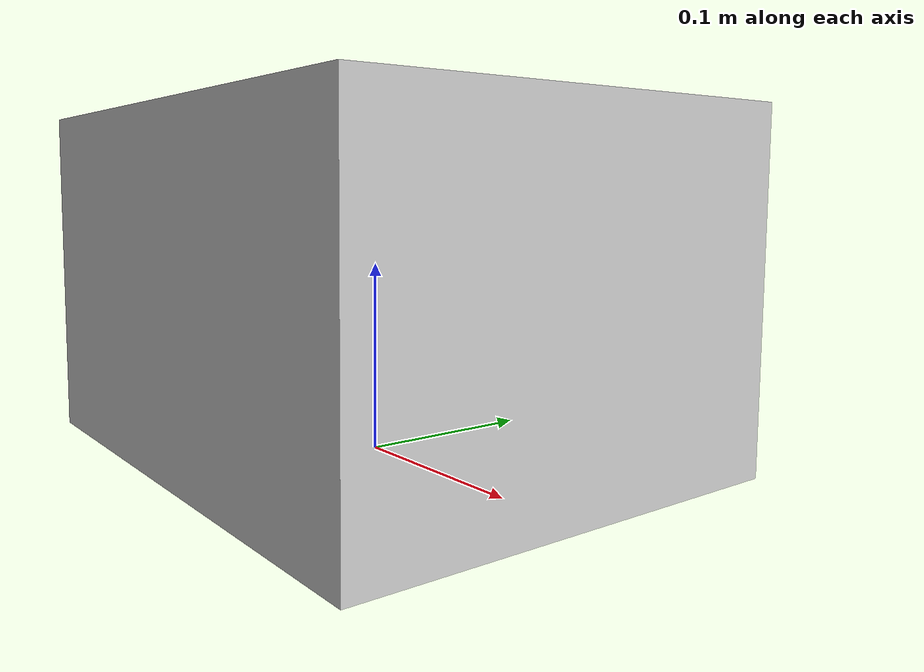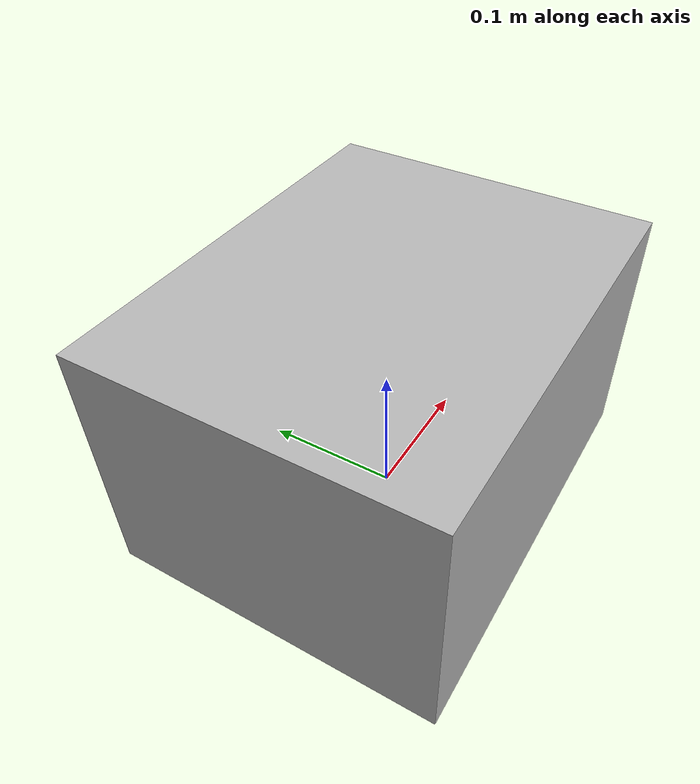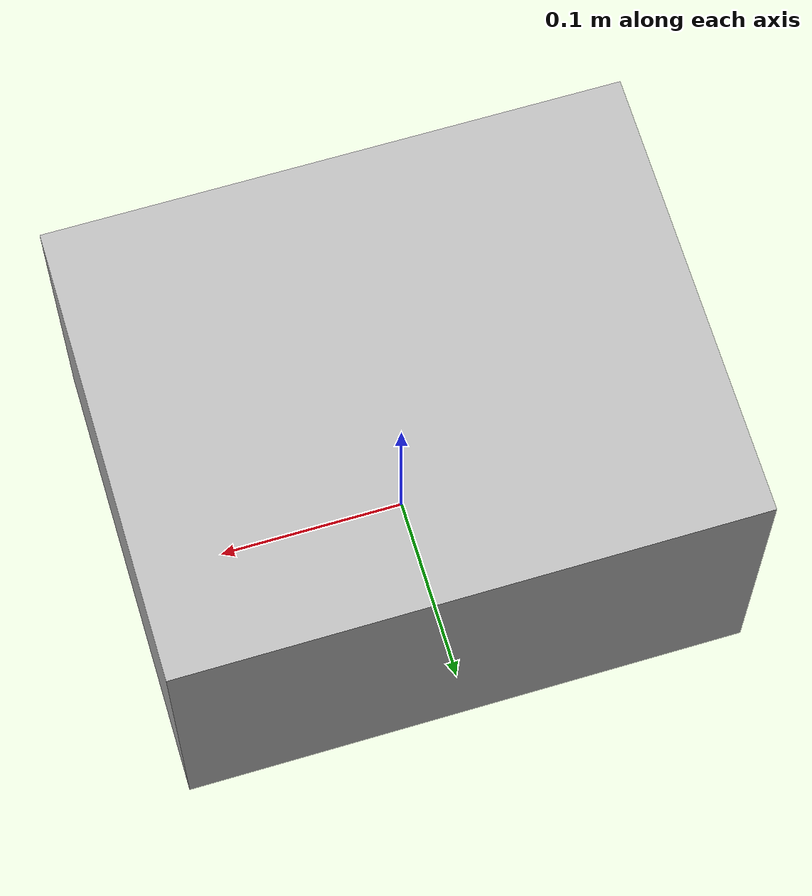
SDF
<?xml version="1.0" ?>
<sdf version="1.6">
  <model name="robotnik_automation_logo_box_40">
    <pose>0 0 0.09 0 0 0</pose>
    <link name="link">
      <inertial>
        <mass>2</mass>
        <inertia>
          <ixx>0.041666667</ixx>
          <ixy>0</ixy>
          <ixz>0</ixz>
          <iyy>0.056666667</iyy>
          <iyz>0</iyz>
          <izz>0.068333333</izz>
        </inertia>
      </inertial>
      <collision name="collision">
        <geometry>
          <box>
            <size>0.3 0.24 0.18</size>
          </box>
        </geometry>
        <surface>
          <friction>
            <ode>
              <mu>1.0</mu>
              <mu2>1.0</mu2>
            </ode>
          </friction>
          <contact>
            <ode>
              <kp>10000000.0</kp>
              <kd>1.0</kd>
              <min_depth>0.001</min_depth>
              <max_vel>0.1</max_vel>
            </ode>
          </contact>
        </surface>
      </collision>
      <visual name="visual">
        <pose>0 0 -0.09 0 0 0</pose>
        <geometry>
          <mesh>
            <uri>meshes/cardboard_box.dae</uri>
            <scale>0.755591376 0.6044731008 0.4533548256</scale>
          </mesh>
        </geometry>
      </visual>
    </link>
  </model>
</sdf>
